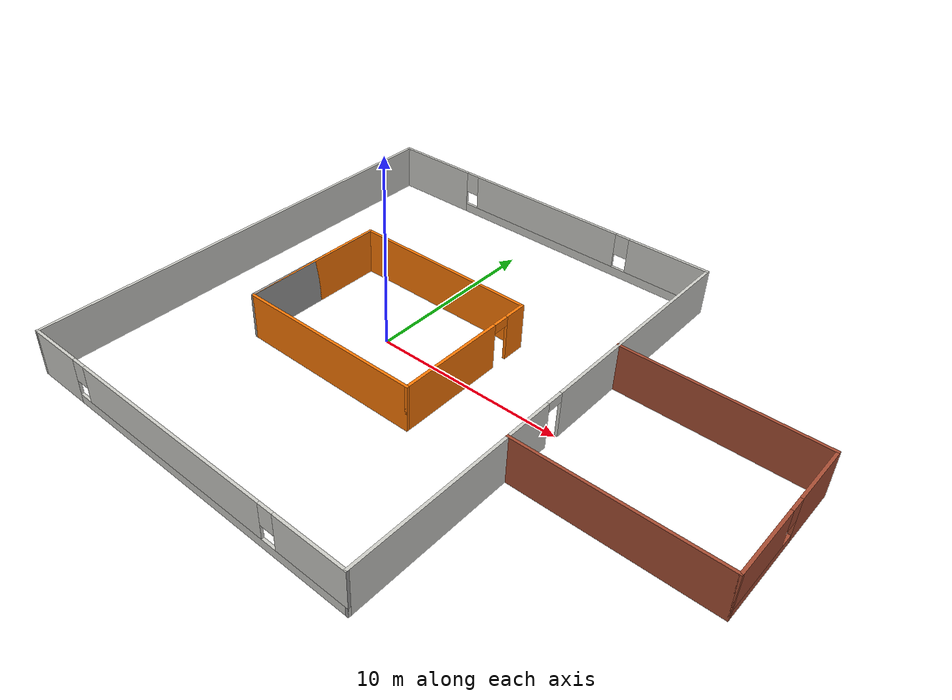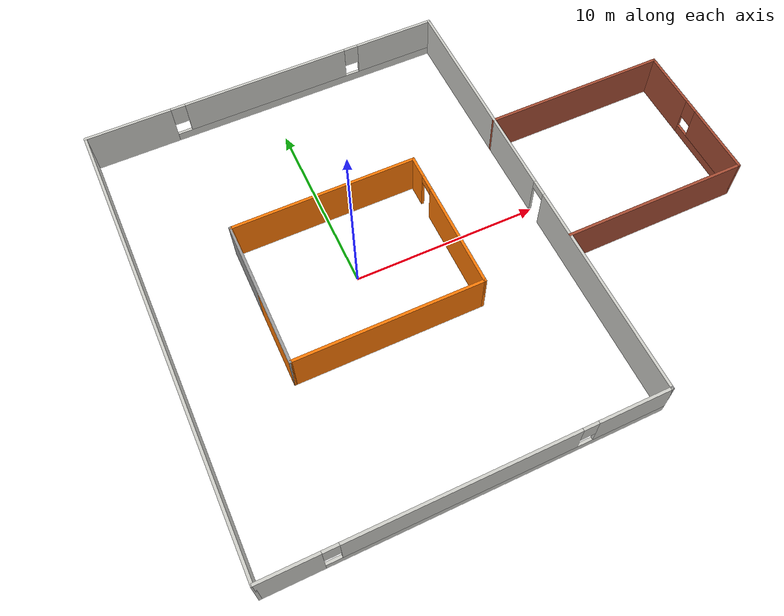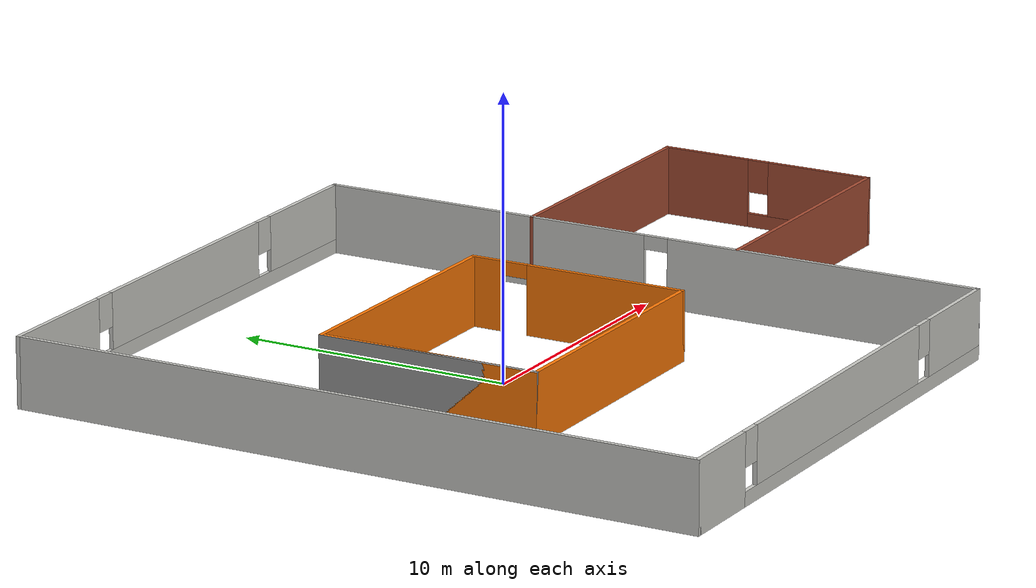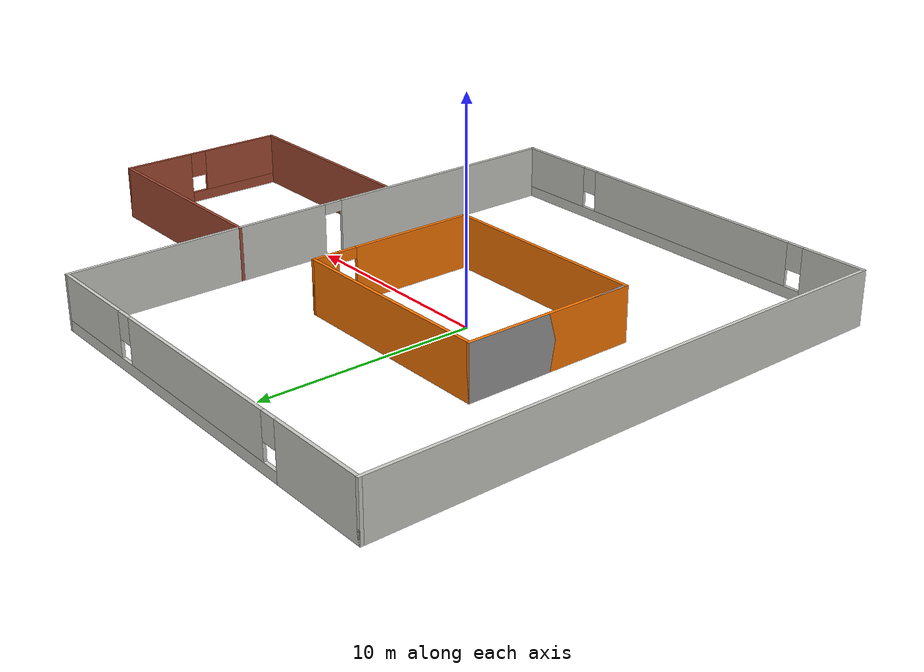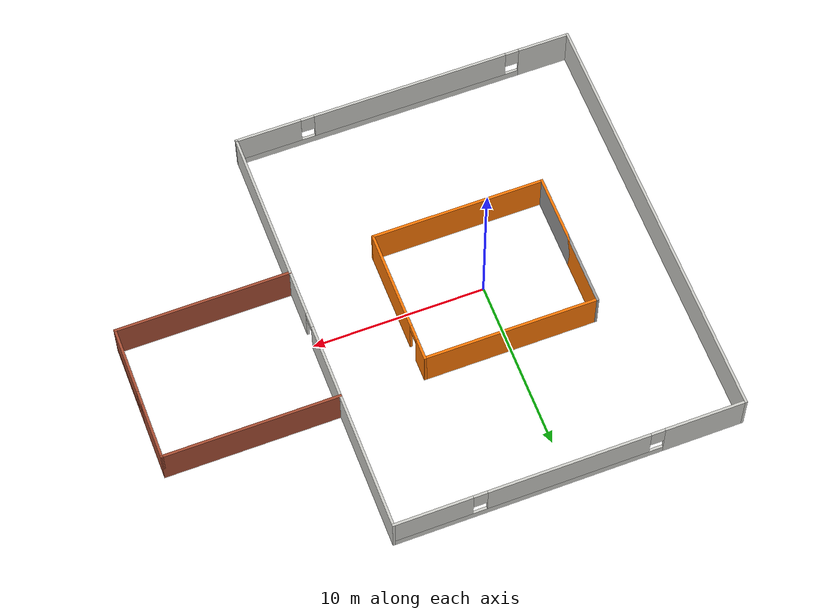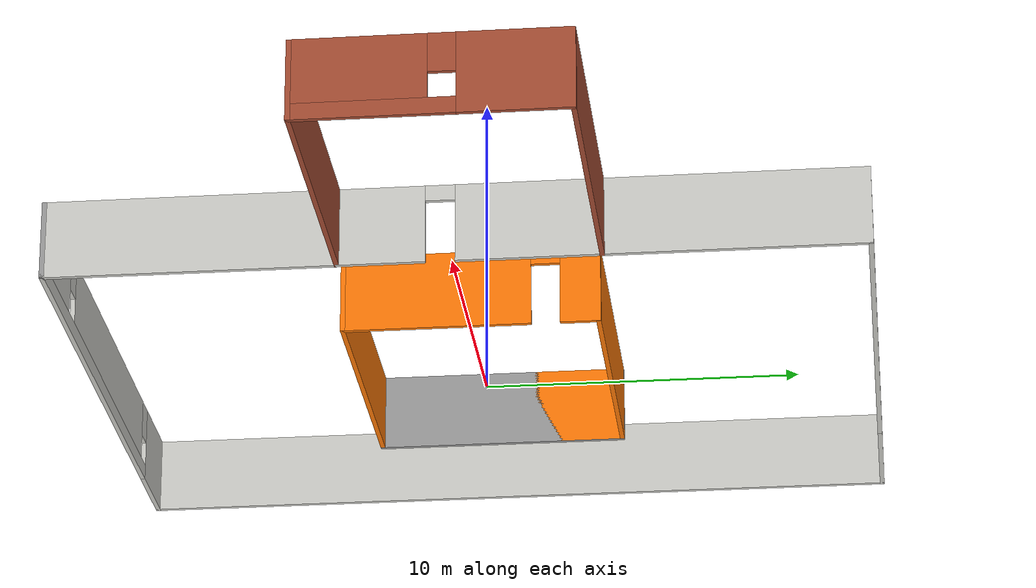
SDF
<?xml version='1.0'?>
<sdf version='1.7'>
  <model name='building_env'>
    <pose>5 0 0 0 -0 0</pose>
    <link name='Wall_36'>
      <pose>-5 12.5 0 0 -0 0</pose>
      <visual name='Wall_36_Visual_0'>
        <pose>-7.7073 0 1.25 0 -0 0</pose>
        <geometry>
          <box>
            <size>4.73541 0.15 2.5</size>
          </box>
        </geometry>
        <material>
          <script>
            <uri>file://media/materials/scripts/gazebo.material</uri>
            <name>Gazebo/CeilingTiled</name>
          </script>
          <ambient>1 1 1 1</ambient>
        </material>
        <meta>
          <layer>0</layer>
        </meta>
      </visual>
      <collision name='Wall_36_Collision_0'>
        <geometry>
          <box>
            <size>4.73541 0.15 2.5</size>
          </box>
        </geometry>
        <pose>-7.7073 0 1.25 0 -0 0</pose>
      </collision>
      <visual name='Wall_36_Visual_1'>
        <pose>2.3677 0 0.25 0 -0 0</pose>
        <geometry>
          <box>
            <size>15.4146 0.15 0.5</size>
          </box>
        </geometry>
        <material>
          <script>
            <uri>file://media/materials/scripts/gazebo.material</uri>
            <name>Gazebo/CeilingTiled</name>
          </script>
          <ambient>1 1 1 1</ambient>
        </material>
        <meta>
          <layer>0</layer>
        </meta>
      </visual>
      <collision name='Wall_36_Collision_1'>
        <geometry>
          <box>
            <size>15.4146 0.15 0.5</size>
          </box>
        </geometry>
        <pose>2.3677 0 0.25 0 -0 0</pose>
      </collision>
      <visual name='Wall_36_Visual_2'>
        <pose>0.099134 0 1.5 0 -0 0</pose>
        <geometry>
          <box>
            <size>9.27745 0.15 2</size>
          </box>
        </geometry>
        <material>
          <script>
            <uri>file://media/materials/scripts/gazebo.material</uri>
            <name>Gazebo/CeilingTiled</name>
          </script>
          <ambient>1 1 1 1</ambient>
        </material>
        <meta>
          <layer>0</layer>
        </meta>
      </visual>
      <collision name='Wall_36_Collision_2'>
        <geometry>
          <box>
            <size>9.27745 0.15 2</size>
          </box>
        </geometry>
        <pose>0.099134 0 1.5 0 -0 0</pose>
      </collision>
      <visual name='Wall_36_Visual_3'>
        <pose>7.80643 0 1.5 0 -0 0</pose>
        <geometry>
          <box>
            <size>4.53714 0.15 2</size>
          </box>
        </geometry>
        <material>
          <script>
            <uri>file://media/materials/scripts/gazebo.material</uri>
            <name>Gazebo/CeilingTiled</name>
          </script>
          <ambient>1 1 1 1</ambient>
        </material>
        <meta>
          <layer>0</layer>
        </meta>
      </visual>
      <collision name='Wall_36_Collision_3'>
        <geometry>
          <box>
            <size>4.53714 0.15 2</size>
          </box>
        </geometry>
        <pose>7.80643 0 1.5 0 -0 0</pose>
      </collision>
      <visual name='Wall_36_Visual_4'>
        <pose>-4.93959 0 1.9 0 -0 0</pose>
        <geometry>
          <box>
            <size>0.8 0.15 1.2</size>
          </box>
        </geometry>
        <material>
          <script>
            <uri>file://media/materials/scripts/gazebo.material</uri>
            <name>Gazebo/CeilingTiled</name>
          </script>
          <ambient>1 1 1 1</ambient>
        </material>
        <meta>
          <layer>0</layer>
        </meta>
      </visual>
      <collision name='Wall_36_Collision_4'>
        <geometry>
          <box>
            <size>0.8 0.15 1.2</size>
          </box>
        </geometry>
        <pose>-4.93959 0 1.9 0 -0 0</pose>
      </collision>
      <visual name='Wall_36_Visual_5'>
        <pose>5.13786 0 1.9 0 -0 0</pose>
        <geometry>
          <box>
            <size>0.8 0.15 1.2</size>
          </box>
        </geometry>
        <material>
          <script>
            <uri>file://media/materials/scripts/gazebo.material</uri>
            <name>Gazebo/CeilingTiled</name>
          </script>
          <ambient>1 1 1 1</ambient>
        </material>
        <meta>
          <layer>0</layer>
        </meta>
      </visual>
      <collision name='Wall_36_Collision_5'>
        <geometry>
          <box>
            <size>0.8 0.15 1.2</size>
          </box>
        </geometry>
        <pose>5.13786 0 1.9 0 -0 0</pose>
      </collision>
    </link>
    <link name='Wall_38'>
      <collision name='Wall_38_Collision'>
        <geometry>
          <box>
            <size>25.15 0.15 2.5</size>
          </box>
        </geometry>
        <pose>0 0 1.25 0 -0 0</pose>
      </collision>
      <visual name='Wall_38_Visual'>
        <pose>0 0 1.25 0 -0 0</pose>
        <geometry>
          <box>
            <size>25.15 0.15 2.5</size>
          </box>
        </geometry>
        <material>
          <script>
            <uri>file://media/materials/scripts/gazebo.material</uri>
            <name>Gazebo/CeilingTiled</name>
          </script>
          <ambient>1 1 1 1</ambient>
        </material>
        <meta>
          <layer>0</layer>
        </meta>
      </visual>
      <pose>-15 0 0 0 -0 -1.5708</pose>
    </link>
    <link name='Wall_40'>
      <pose>5 0 0 0 -0 -1.5708</pose>
      <visual name='Wall_40_Visual_0'>
        <pose>-6.32697 0 1.25 0 -0 0</pose>
        <geometry>
          <box>
            <size>12.4961 0.15 2.5</size>
          </box>
        </geometry>
        <material>
          <script>
            <uri>file://media/materials/scripts/gazebo.material</uri>
            <name>Gazebo/CeilingTiled</name>
          </script>
          <ambient>1 1 1 1</ambient>
        </material>
        <meta>
          <layer>0</layer>
        </meta>
      </visual>
      <collision name='Wall_40_Collision_0'>
        <geometry>
          <box>
            <size>12.4961 0.15 2.5</size>
          </box>
        </geometry>
        <pose>-6.32697 0 1.25 0 -0 0</pose>
      </collision>
      <visual name='Wall_40_Visual_1'>
        <pose>6.69803 0 1.25 0 -0 0</pose>
        <geometry>
          <box>
            <size>11.7539 0.15 2.5</size>
          </box>
        </geometry>
        <material>
          <script>
            <uri>file://media/materials/scripts/gazebo.material</uri>
            <name>Gazebo/CeilingTiled</name>
          </script>
          <ambient>1 1 1 1</ambient>
        </material>
        <meta>
          <layer>0</layer>
        </meta>
      </visual>
      <collision name='Wall_40_Collision_1'>
        <geometry>
          <box>
            <size>11.7539 0.15 2.5</size>
          </box>
        </geometry>
        <pose>6.69803 0 1.25 0 -0 0</pose>
      </collision>
      <visual name='Wall_40_Visual_2'>
        <pose>0.37107 0 2.25 0 -0 0</pose>
        <geometry>
          <box>
            <size>0.9 0.15 0.5</size>
          </box>
        </geometry>
        <material>
          <script>
            <uri>file://media/materials/scripts/gazebo.material</uri>
            <name>Gazebo/CeilingTiled</name>
          </script>
          <ambient>1 1 1 1</ambient>
        </material>
        <meta>
          <layer>0</layer>
        </meta>
      </visual>
      <collision name='Wall_40_Collision_2'>
        <geometry>
          <box>
            <size>0.9 0.15 0.5</size>
          </box>
        </geometry>
        <pose>0.37107 0 2.25 0 -0 0</pose>
      </collision>
    </link>
    <link name='Wall_41'>
      <collision name='Wall_41_Collision'>
        <geometry>
          <box>
            <size>0.15 0.15 2.5</size>
          </box>
        </geometry>
        <pose>0 0 1.25 0 -0 0</pose>
      </collision>
      <visual name='Wall_41_Visual'>
        <pose>0 0 1.25 0 -0 0</pose>
        <geometry>
          <box>
            <size>0.15 0.15 2.5</size>
          </box>
        </geometry>
        <material>
          <script>
            <uri>file://media/materials/scripts/gazebo.material</uri>
            <name>Gazebo/Grey</name>
          </script>
          <ambient>1 1 1 1</ambient>
        </material>
        <meta>
          <layer>0</layer>
        </meta>
      </visual>
      <pose>5 -12.5 0 0 -0 0</pose>
    </link>
    <link name='Wall_49'>
      <collision name='Wall_49_Collision'>
        <geometry>
          <box>
            <size>8.15 0.15 2.5</size>
          </box>
        </geometry>
        <pose>0 0 1.25 0 -0 0</pose>
      </collision>
      <visual name='Wall_49_Visual'>
        <pose>0 0 1.25 0 -0 0</pose>
        <geometry>
          <box>
            <size>8.15 0.15 2.5</size>
          </box>
        </geometry>
        <material>
          <script>
            <uri>file://media/materials/scripts/gazebo.material</uri>
            <name>Gazebo/Grey</name>
          </script>
          <ambient>1 1 1 1</ambient>
        </material>
        <meta>
          <layer>0</layer>
        </meta>
      </visual>
      <pose>-10 0 0 0 -0 1.5708</pose>
    </link>
    <link name='Wall_50'>
      <collision name='Wall_50_Collision'>
        <geometry>
          <box>
            <size>8.15 0.15 2.5</size>
          </box>
        </geometry>
        <pose>0 0 1.25 0 -0 0</pose>
      </collision>
      <visual name='Wall_50_Visual'>
        <pose>0 0 1.25 0 -0 0</pose>
        <geometry>
          <box>
            <size>8.15 0.15 2.5</size>
          </box>
        </geometry>
        <material>
          <script>
            <uri>file://media/materials/scripts/gazebo.material</uri>
            <name>Gazebo/Grey</name>
          </script>
          <ambient>0.996078 0.47451 0.0196078 1</ambient>
        </material>
        <meta>
          <layer>0</layer>
        </meta>
      </visual>
      <pose>-10 0 0 0 -0 -1.5708</pose>
    </link>
    <link name='Wall_52'>
      <pose>-5 -12.5 0 0 -0 0</pose>
      <visual name='Wall_52_Visual_0'>
        <pose>-8.52725 0 1.25 0 -0 0</pose>
        <geometry>
          <box>
            <size>3.09551 0.15 2.5</size>
          </box>
        </geometry>
        <material>
          <script>
            <uri>file://media/materials/scripts/gazebo.material</uri>
            <name>Gazebo/CeilingTiled</name>
          </script>
          <ambient>1 1 1 1</ambient>
        </material>
        <meta>
          <layer>0</layer>
        </meta>
      </visual>
      <collision name='Wall_52_Collision_0'>
        <geometry>
          <box>
            <size>3.09551 0.15 2.5</size>
          </box>
        </geometry>
        <pose>-8.52725 0 1.25 0 -0 0</pose>
      </collision>
      <visual name='Wall_52_Visual_1'>
        <pose>1.54775 0 0.25 0 -0 0</pose>
        <geometry>
          <box>
            <size>17.0545 0.15 0.5</size>
          </box>
        </geometry>
        <material>
          <script>
            <uri>file://media/materials/scripts/gazebo.material</uri>
            <name>Gazebo/CeilingTiled</name>
          </script>
          <ambient>1 1 1 1</ambient>
        </material>
        <meta>
          <layer>0</layer>
        </meta>
      </visual>
      <collision name='Wall_52_Collision_1'>
        <geometry>
          <box>
            <size>17.0545 0.15 0.5</size>
          </box>
        </geometry>
        <pose>1.54775 0 0.25 0 -0 0</pose>
      </collision>
      <visual name='Wall_52_Visual_2'>
        <pose>-0.390191 0 1.5 0 -0 0</pose>
        <geometry>
          <box>
            <size>11.5786 0.15 2</size>
          </box>
        </geometry>
        <material>
          <script>
            <uri>file://media/materials/scripts/gazebo.material</uri>
            <name>Gazebo/CeilingTiled</name>
          </script>
          <ambient>1 1 1 1</ambient>
        </material>
        <meta>
          <layer>0</layer>
        </meta>
      </visual>
      <collision name='Wall_52_Collision_2'>
        <geometry>
          <box>
            <size>11.5786 0.15 2</size>
          </box>
        </geometry>
        <pose>-0.390191 0 1.5 0 -0 0</pose>
      </collision>
      <visual name='Wall_52_Visual_3'>
        <pose>8.13705 0 1.5 0 -0 0</pose>
        <geometry>
          <box>
            <size>3.87589 0.15 2</size>
          </box>
        </geometry>
        <material>
          <script>
            <uri>file://media/materials/scripts/gazebo.material</uri>
            <name>Gazebo/CeilingTiled</name>
          </script>
          <ambient>1 1 1 1</ambient>
        </material>
        <meta>
          <layer>0</layer>
        </meta>
      </visual>
      <collision name='Wall_52_Collision_3'>
        <geometry>
          <box>
            <size>3.87589 0.15 2</size>
          </box>
        </geometry>
        <pose>8.13705 0 1.5 0 -0 0</pose>
      </collision>
      <visual name='Wall_52_Visual_4'>
        <pose>-6.57949 0 1.9 0 -0 0</pose>
        <geometry>
          <box>
            <size>0.8 0.15 1.2</size>
          </box>
        </geometry>
        <material>
          <script>
            <uri>file://media/materials/scripts/gazebo.material</uri>
            <name>Gazebo/CeilingTiled</name>
          </script>
          <ambient>1 1 1 1</ambient>
        </material>
        <meta>
          <layer>0</layer>
        </meta>
      </visual>
      <collision name='Wall_52_Collision_4'>
        <geometry>
          <box>
            <size>0.8 0.15 1.2</size>
          </box>
        </geometry>
        <pose>-6.57949 0 1.9 0 -0 0</pose>
      </collision>
      <visual name='Wall_52_Visual_5'>
        <pose>5.79911 0 1.9 0 -0 0</pose>
        <geometry>
          <box>
            <size>0.8 0.15 1.2</size>
          </box>
        </geometry>
        <material>
          <script>
            <uri>file://media/materials/scripts/gazebo.material</uri>
            <name>Gazebo/CeilingTiled</name>
          </script>
          <ambient>1 1 1 1</ambient>
        </material>
        <meta>
          <layer>0</layer>
        </meta>
      </visual>
      <collision name='Wall_52_Collision_5'>
        <geometry>
          <box>
            <size>0.8 0.15 1.2</size>
          </box>
        </geometry>
        <pose>5.79911 0 1.9 0 -0 0</pose>
      </collision>
    </link>
    <link name='Wall_54'>
      <collision name='Wall_54_Collision'>
        <geometry>
          <box>
            <size>10.15 0.15 2.5</size>
          </box>
        </geometry>
        <pose>0 0 1.25 0 -0 0</pose>
      </collision>
      <visual name='Wall_54_Visual'>
        <pose>0 0 1.25 0 -0 0</pose>
        <geometry>
          <box>
            <size>10.15 0.15 2.5</size>
          </box>
        </geometry>
        <material>
          <script>
            <uri>file://media/materials/scripts/gazebo.material</uri>
            <name>Gazebo/Grey</name>
          </script>
          <ambient>0.996078 0.47451 0.0196078 1</ambient>
        </material>
        <meta>
          <layer>0</layer>
        </meta>
      </visual>
      <pose>-5 4 0 0 -0 0</pose>
    </link>
    <link name='Wall_56'>
      <collision name='Wall_56_Collision'>
        <geometry>
          <box>
            <size>10.15 0.15 2.5</size>
          </box>
        </geometry>
        <pose>0 0 1.25 0 -0 0</pose>
      </collision>
      <visual name='Wall_56_Visual'>
        <pose>0 0 1.25 0 -0 0</pose>
        <geometry>
          <box>
            <size>10.15 0.15 2.5</size>
          </box>
        </geometry>
        <material>
          <script>
            <uri>file://media/materials/scripts/gazebo.material</uri>
            <name>Gazebo/Grey</name>
          </script>
          <ambient>0.996078 0.47451 0.0196078 1</ambient>
        </material>
        <meta>
          <layer>0</layer>
        </meta>
      </visual>
      <pose>-5 -4 0 0 -0 0</pose>
    </link>
    <link name='Wall_58'>
      <pose>0 0 0 0 -0 -1.5708</pose>
      <visual name='Wall_58_Visual_0'>
        <pose>-3.43914 0 1.25 0 -0 0</pose>
        <geometry>
          <box>
            <size>1.27172 0.15 2.5</size>
          </box>
        </geometry>
        <material>
          <script>
            <uri>file://media/materials/scripts/gazebo.material</uri>
            <name>Gazebo/Grey</name>
          </script>
          <ambient>0.996078 0.47451 0.0196078 1</ambient>
        </material>
        <meta>
          <layer>0</layer>
        </meta>
      </visual>
      <collision name='Wall_58_Collision_0'>
        <geometry>
          <box>
            <size>1.27172 0.15 2.5</size>
          </box>
        </geometry>
        <pose>-3.43914 0 1.25 0 -0 0</pose>
      </collision>
      <visual name='Wall_58_Visual_1'>
        <pose>1.08586 0 1.25 0 -0 0</pose>
        <geometry>
          <box>
            <size>5.97828 0.15 2.5</size>
          </box>
        </geometry>
        <material>
          <script>
            <uri>file://media/materials/scripts/gazebo.material</uri>
            <name>Gazebo/Grey</name>
          </script>
          <ambient>0.996078 0.47451 0.0196078 1</ambient>
        </material>
        <meta>
          <layer>0</layer>
        </meta>
      </visual>
      <collision name='Wall_58_Collision_1'>
        <geometry>
          <box>
            <size>5.97828 0.15 2.5</size>
          </box>
        </geometry>
        <pose>1.08586 0 1.25 0 -0 0</pose>
      </collision>
      <visual name='Wall_58_Visual_2'>
        <pose>-2.35328 0 2.25 0 -0 0</pose>
        <geometry>
          <box>
            <size>0.9 0.15 0.5</size>
          </box>
        </geometry>
        <material>
          <script>
            <uri>file://media/materials/scripts/gazebo.material</uri>
            <name>Gazebo/Grey</name>
          </script>
          <ambient>0.996078 0.47451 0.0196078 1</ambient>
        </material>
        <meta>
          <layer>0</layer>
        </meta>
      </visual>
      <collision name='Wall_58_Collision_2'>
        <geometry>
          <box>
            <size>0.9 0.15 0.5</size>
          </box>
        </geometry>
        <pose>-2.35328 0 2.25 0 -0 0</pose>
      </collision>
    </link>
    <link name='Wall_60'>
      <collision name='Wall_60_Collision'>
        <geometry>
          <box>
            <size>10.15 0.15 2.5</size>
          </box>
        </geometry>
        <pose>0 0 1.25 0 -0 0</pose>
      </collision>
      <visual name='Wall_60_Visual'>
        <pose>0 0 1.25 0 -0 0</pose>
        <geometry>
          <box>
            <size>10.15 0.15 2.5</size>
          </box>
        </geometry>
        <material>
          <script>
            <uri>file://media/materials/scripts/gazebo.material</uri>
            <name>Gazebo/Bricks</name>
          </script>
          <ambient>1 1 1 1</ambient>
        </material>
        <meta>
          <layer>0</layer>
        </meta>
      </visual>
      <pose>10 4.5 0 0 -0 0</pose>
    </link>
    <link name='Wall_62'>
      <collision name='Wall_62_Collision'>
        <geometry>
          <box>
            <size>10.15 0.15 2.5</size>
          </box>
        </geometry>
        <pose>0 0 1.25 0 -0 0</pose>
      </collision>
      <visual name='Wall_62_Visual'>
        <pose>0 0 1.25 0 -0 0</pose>
        <geometry>
          <box>
            <size>10.15 0.15 2.5</size>
          </box>
        </geometry>
        <material>
          <script>
            <uri>file://media/materials/scripts/gazebo.material</uri>
            <name>Gazebo/Bricks</name>
          </script>
          <ambient>1 1 1 1</ambient>
        </material>
        <meta>
          <layer>0</layer>
        </meta>
      </visual>
      <pose>10 -3.5 0 0 -0 0</pose>
    </link>
    <link name='Wall_64'>
      <pose>15 0.5 0 0 -0 -1.5708</pose>
      <visual name='Wall_64_Visual_0'>
        <pose>-2.39709 0 1.25 0 -0 0</pose>
        <geometry>
          <box>
            <size>3.35582 0.15 2.5</size>
          </box>
        </geometry>
        <material>
          <script>
            <uri>file://media/materials/scripts/gazebo.material</uri>
            <name>Gazebo/Bricks</name>
          </script>
          <ambient>1 1 1 1</ambient>
        </material>
        <meta>
          <layer>0</layer>
        </meta>
      </visual>
      <collision name='Wall_64_Collision_0'>
        <geometry>
          <box>
            <size>3.35582 0.15 2.5</size>
          </box>
        </geometry>
        <pose>-2.39709 0 1.25 0 -0 0</pose>
      </collision>
      <visual name='Wall_64_Visual_1'>
        <pose>1.67791 0 0.25 0 -0 0</pose>
        <geometry>
          <box>
            <size>4.79418 0.15 0.5</size>
          </box>
        </geometry>
        <material>
          <script>
            <uri>file://media/materials/scripts/gazebo.material</uri>
            <name>Gazebo/Bricks</name>
          </script>
          <ambient>1 1 1 1</ambient>
        </material>
        <meta>
          <layer>0</layer>
        </meta>
      </visual>
      <collision name='Wall_64_Collision_1'>
        <geometry>
          <box>
            <size>4.79418 0.15 0.5</size>
          </box>
        </geometry>
        <pose>1.67791 0 0.25 0 -0 0</pose>
      </collision>
      <visual name='Wall_64_Visual_2'>
        <pose>2.07791 0 1.5 0 -0 0</pose>
        <geometry>
          <box>
            <size>3.99418 0.15 2</size>
          </box>
        </geometry>
        <material>
          <script>
            <uri>file://media/materials/scripts/gazebo.material</uri>
            <name>Gazebo/Bricks</name>
          </script>
          <ambient>1 1 1 1</ambient>
        </material>
        <meta>
          <layer>0</layer>
        </meta>
      </visual>
      <collision name='Wall_64_Collision_2'>
        <geometry>
          <box>
            <size>3.99418 0.15 2</size>
          </box>
        </geometry>
        <pose>2.07791 0 1.5 0 -0 0</pose>
      </collision>
      <visual name='Wall_64_Visual_3'>
        <pose>-0.31918 0 1.9 0 -0 0</pose>
        <geometry>
          <box>
            <size>0.8 0.15 1.2</size>
          </box>
        </geometry>
        <material>
          <script>
            <uri>file://media/materials/scripts/gazebo.material</uri>
            <name>Gazebo/Bricks</name>
          </script>
          <ambient>1 1 1 1</ambient>
        </material>
        <meta>
          <layer>0</layer>
        </meta>
      </visual>
      <collision name='Wall_64_Collision_3'>
        <geometry>
          <box>
            <size>0.8 0.15 1.2</size>
          </box>
        </geometry>
        <pose>-0.31918 0 1.9 0 -0 0</pose>
      </collision>
    </link>
    <static>1</static>
  </model>
</sdf>
